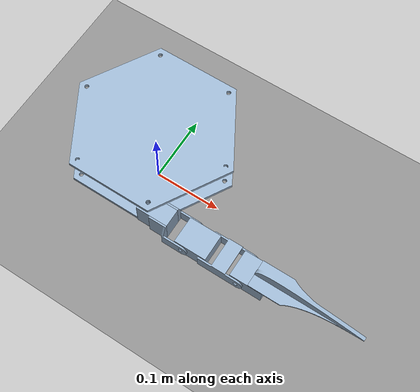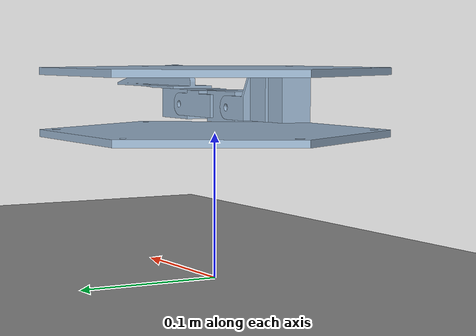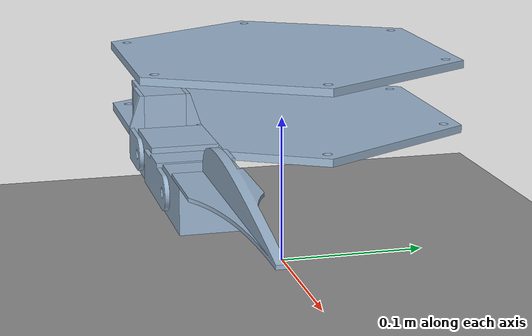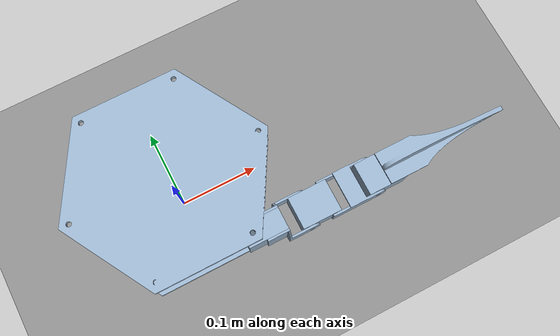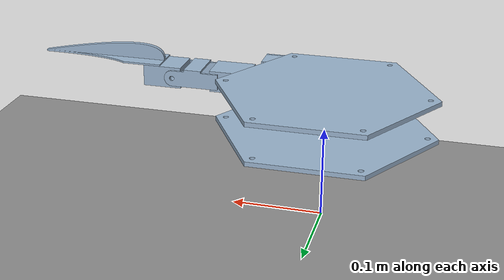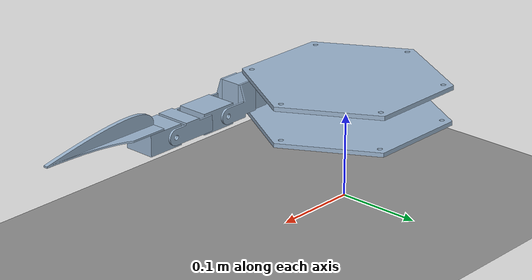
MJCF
<mujoco model="hexapod_leg">
    <compiler meshdir="meshes" angle="degree" /> <asset>
        <mesh name="Frame" file="Frame.stl" scale="0.001 0.001 0.001"/>
        <mesh name="ServoCoxa" file="ServoCoxa.stl" scale="0.001 0.001 0.001"/>
        <mesh name="Coxa" file="Coxa.stl" scale="0.001 0.001 0.001"/>
        <mesh name="ServoFemur" file="ServoFemur.stl" scale="0.001 0.001 0.001"/>
        <mesh name="Femur" file="Femur.stl" scale="0.001 0.001 0.001"/>
        <mesh name="ServoTibia" file="ServoTibia.stl" scale="0.001 0.001 0.001"/>
        <mesh name="Tibia" file="Tibia.stl" scale="0.001 0.001 0.001"/>

        <texture name="checker_texture" type="2d" builtin="checker" width="512" height="512"
                 rgb1="0.7 0.7 0.7" rgb2="0.4 0.4 0.4" mark="none"/> <material name="floor_material" texture="checker_texture" texrepeat="10 10" texuniform="true"
                  shininess="0.0" reflectance="0.0"/> <material name="robot_material" rgba="0.6 0.7 0.8 1" shininess="0.1" reflectance="0.05"/>
        </asset>

    <worldbody>
        <light name="main_light" pos="0.8 -0.8 2.0" dir="-0.3 0.3 -1" diffuse="0.7 0.7 0.7" specular="0.2 0.2 0.2" active="true" castshadow="true"/>

        <light name="fill_light" pos="-0.5 0.5 1.0" dir="0.2 -0.2 -1" diffuse="0.3 0.3 0.3" specular="0 0 0" active="true" castshadow="false"/>

        <body name="floor" pos="0 0 0">
            <geom type="plane" size="1 1 0.1" material="floor_material" conaffinity="1" contype="1"/>
        </body>

        <body name="Frame" pos="0 0 0.1"> <geom type="mesh" mesh="Frame" material="robot_material" conaffinity="1" contype="2"/>
            <body name="ServoCoxa">
            	<geom type="mesh" mesh="ServoCoxa" material="robot_material" conaffinity="1" contype="2"/>
            	<joint name="joint_1" pos="0.0542 -0.0939 0.0025" axis="0 0 1" limited="true" range="-90 90"/>
            	<body name="Coxa">
            		<geom type="mesh" mesh="Coxa" material="robot_material" conaffinity="1" contype="2"/>
            		<body name="ServoFemur">
            			<geom type="mesh" mesh="ServoFemur" material="robot_material" conaffinity="1" contype="2"/>
            			<joint name="joint_2" pos="0.1146 -0.1126 0.0118" axis="0 -1 0" limited="true" range="-90 90"/>
	            		<body name="Femur">
		            		<geom type="mesh" mesh="Femur" material="robot_material" conaffinity="1" contype="2"/>
                            <body name="ServoTibia">
                                <geom type="mesh" mesh="ServoTibia" material="robot_material" conaffinity="1" contype="2"/>
                                <joint name="joint_3" pos="0.1959 -0.1126 0.0118" axis="0 -1 0" limited="true" range="-90 90"/>
                                <body name="Tibia">
                                    <geom type="mesh" mesh="Tibia" material="robot_material" conaffinity="1" contype="2"/>
                                </body>
                            </body>
	            		</body>
            		</body>
            	</body>
            </body>
        </body>
    </worldbody>

    <contact>
        <exclude body1="Frame" body2="ServoCoxa"/>
        <exclude body1="ServoCoxa" body2="Coxa"/>
        <exclude body1="Coxa" body2="ServoFemur"/>
        <exclude body1="ServoFemur" body2="Femur"/>
        <exclude body1="Femur" body2="ServoTibia"/>
        <exclude body1="ServoTibia" body2="Tibia"/>
    </contact>

</mujoco>
